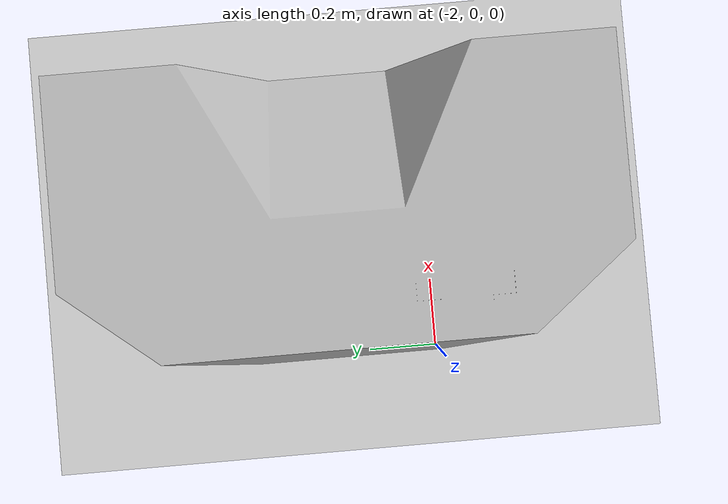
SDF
<?xml version="1.0" ?>

<sdf version="1.5">
    <world name="default">
        <!-- Target real time factor is the product of max_step_size and real_time_update_rate -->
        <!-- Negative real_time_update_rate means that Gazebo will run as fast as possible -->
        <physics type="ode">
            <max_step_size>0.001</max_step_size>
            <real_time_update_rate>1000</real_time_update_rate>
        </physics>

        <include>
            <uri>model://ground_plane</uri>
        </include>

        <light name='sun' type='directional'>
            <cast_shadows>1</cast_shadows>
            <pose>0 0 10 0 -0 0</pose>
            <diffuse>0.8 0.8 0.8 1</diffuse>
            <specular>0.2 0.2 0.2 1</specular>
            <attenuation>
                <range>1000</range>
                <constant>0.9</constant>
                <linear>0.01</linear>
                <quadratic>0.001</quadratic>
            </attenuation>
            <direction>-0.5 0.1 -0.9</direction>
        </light>

        <model name='exchange_station'>
            <static>1</static>
            <static>1</static>
            <link name='exchange_station_link'>
                <pose>-2 0 0 0 0 0</pose>
                <visual name='visual'>
                    <geometry>
                        <mesh>
                            <uri>model://rm_gazebo/worlds/place/exchange_station.stl</uri>
                            <scale>0.001 0.001 0.001</scale>
                        </mesh>
                    </geometry>
                </visual>
                <collision name='collision'>
                    <geometry>
                        <mesh>
                            <uri>model://rm_gazebo/worlds/place/big_resource.stl</uri>
                            <scale>0.001 0.001 0.001</scale>
                        </mesh>
                    </geometry>
                    <max_contacts>10</max_contacts>
                    <surface>
                        <bounce/>
                        <friction>
                            <ode/>
                        </friction>
                        <contact>
                            <ode/>
                        </contact>
                    </surface>
                </collision>
                <velocity_decay>
                    <linear>0</linear>
                    <angular>0</angular>
                </velocity_decay>
                <self_collide>0</self_collide>
                <kinematic>0</kinematic>
                <gravity>1</gravity>
            </link>
            <static>1</static>
        </model>
    </world>
</sdf>
